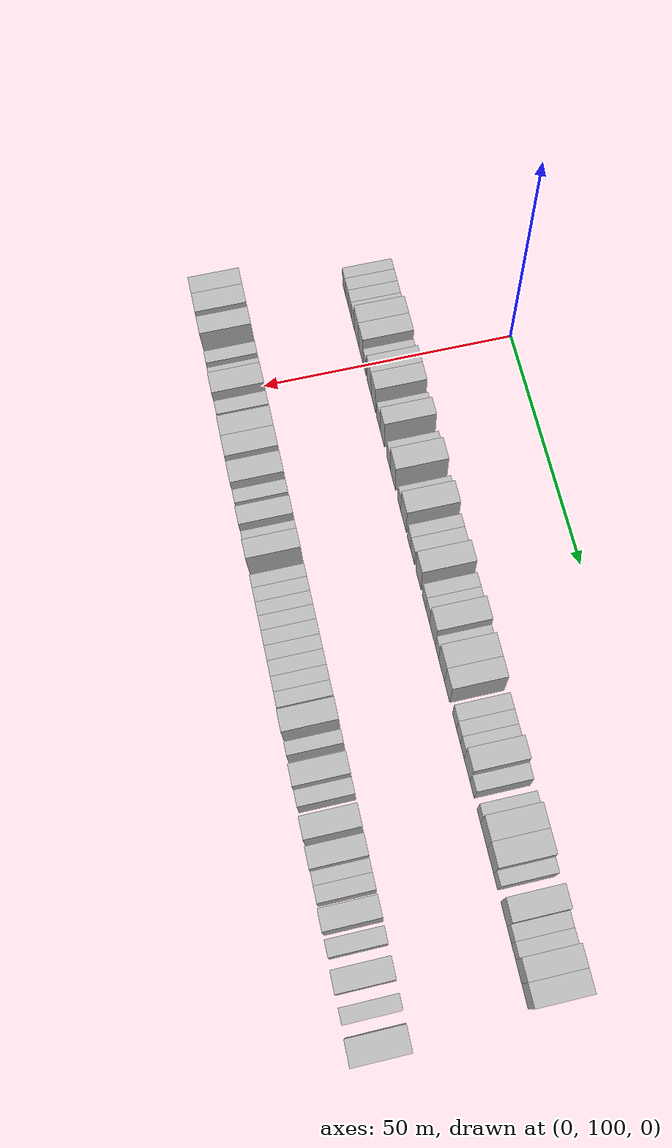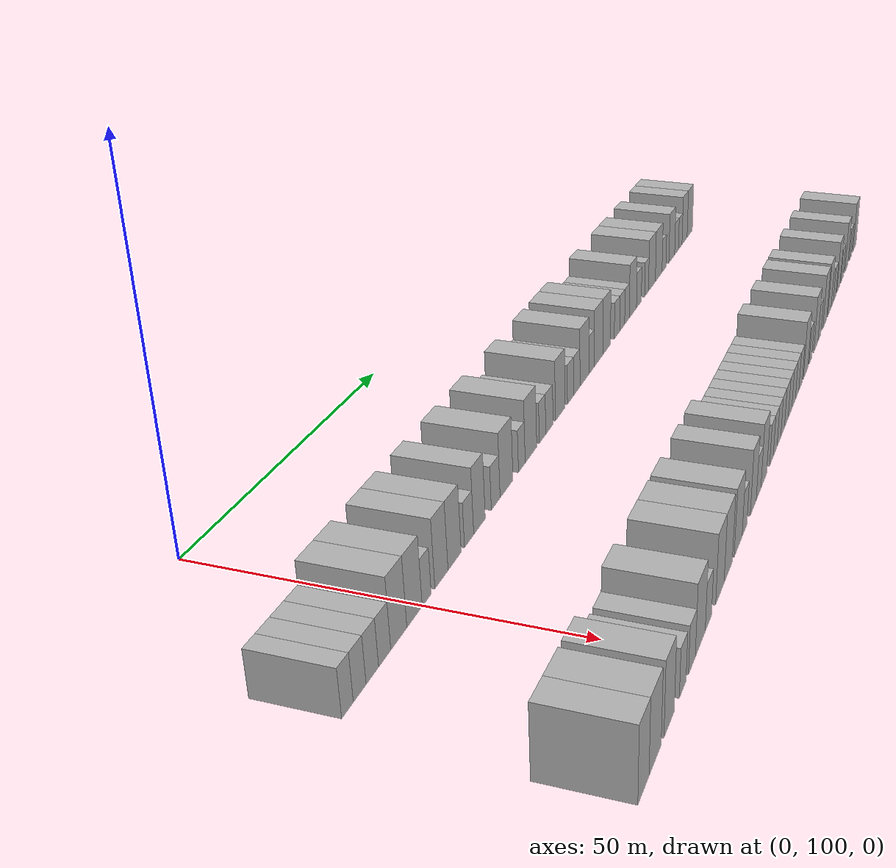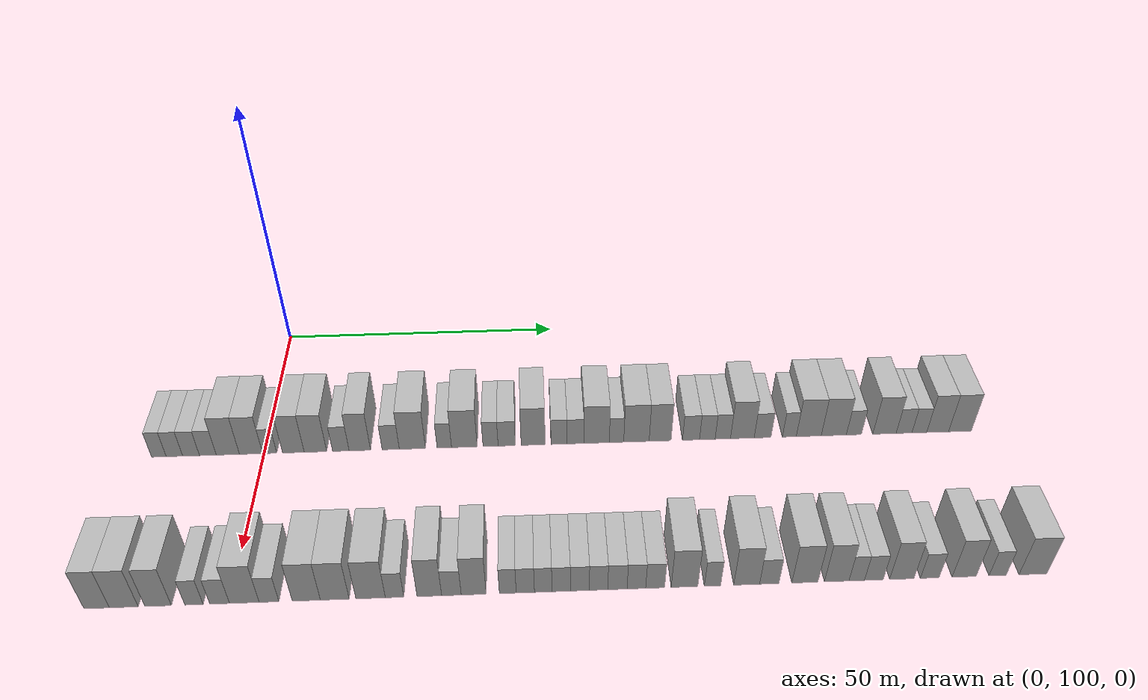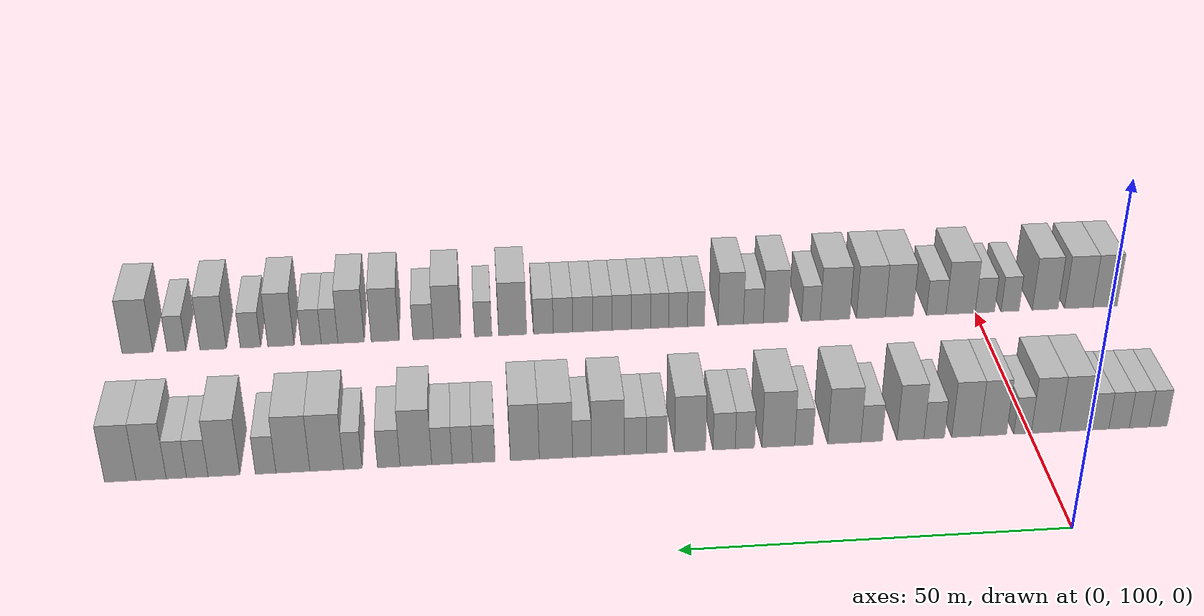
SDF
<sdf version="1.6">
 <world name="default">
  <model name="building_80">
   <static>1</static>
   <pose>25.0000 82.2158 0 0.000000 0.000000 0.000000</pose>
   <link name="link">
    <pose>0 0 3.00 0 0 0</pose>
    <collision name="collision"><geometry><box><size>10.0000 2.4745 6.0000</size></box></geometry></collision>
    <visual name="visual">
     <cast_shadows>0</cast_shadows>
     <geometry><box><size>10.0000 2.4745 6.0000</size></box></geometry>
     <material>
      <script>
       <uri>model://HANNAS_wall/materials/scripts</uri>
       <uri>model://HANNAS_wall/materials/textures</uri>
       <name>vrc/HANNAS_wall</name>
      </script>
     </material>
    </visual>
   </link>
  </model>
  <model name="building_81">
   <static>1</static>
   <pose>25.0000 84.8441 0 0.000000 0.000000 0.000000</pose>
   <link name="link">
    <pose>0 0 3.00 0 0 0</pose>
    <collision name="collision"><geometry><box><size>10.0000 2.7821 6.0000</size></box></geometry></collision>
    <visual name="visual">
     <cast_shadows>0</cast_shadows>
     <geometry><box><size>10.0000 2.7821 6.0000</size></box></geometry>
     <material>
      <script>
       <uri>model://HANNAS_wall/materials/scripts</uri>
       <uri>model://HANNAS_wall/materials/textures</uri>
       <name>vrc/HANNAS_wall</name>
      </script>
     </material>
    </visual>
   </link>
  </model>
  <model name="building_82">
   <static>1</static>
   <pose>25.0000 87.6559 0 0.000000 0.000000 0.000000</pose>
   <link name="link">
    <pose>0 0 3.00 0 0 0</pose>
    <collision name="collision"><geometry><box><size>10.0000 2.8415 6.0000</size></box></geometry></collision>
    <visual name="visual">
     <cast_shadows>0</cast_shadows>
     <geometry><box><size>10.0000 2.8415 6.0000</size></box></geometry>
     <material>
      <script>
       <uri>model://HANNAS_wall/materials/scripts</uri>
       <uri>model://HANNAS_wall/materials/textures</uri>
       <name>vrc/HANNAS_wall</name>
      </script>
     </material>
    </visual>
   </link>
  </model>
  <model name="building_83">
   <static>1</static>
   <pose>25.0000 90.5037 0 0.000000 0.000000 0.000000</pose>
   <link name="link">
    <pose>0 0 3.00 0 0 0</pose>
    <collision name="collision"><geometry><box><size>10.0000 2.8540 6.0000</size></box></geometry></collision>
    <visual name="visual">
     <cast_shadows>0</cast_shadows>
     <geometry><box><size>10.0000 2.8540 6.0000</size></box></geometry>
     <material>
      <script>
       <uri>model://HANNAS_wall/materials/scripts</uri>
       <uri>model://HANNAS_wall/materials/textures</uri>
       <name>vrc/HANNAS_wall</name>
      </script>
     </material>
    </visual>
   </link>
  </model>
  <model name="building_84">
   <static>1</static>
   <pose>25.0000 93.8968 0 0.000000 0.000000 0.000000</pose>
   <link name="link">
    <pose>0 0 4.50 0 0 0</pose>
    <collision name="collision"><geometry><box><size>10.0000 3.9322 9.0000</size></box></geometry></collision>
    <visual name="visual">
     <cast_shadows>0</cast_shadows>
     <geometry><box><size>10.0000 3.9322 9.0000</size></box></geometry>
     <material>
      <script>
       <uri>model://HANNAS_wall/materials/scripts</uri>
       <uri>model://HANNAS_wall/materials/textures</uri>
       <name>vrc/HANNAS_wall</name>
      </script>
     </material>
    </visual>
   </link>
  </model>
  <model name="building_85">
   <static>1</static>
   <pose>25.0000 97.8364 0 0.000000 0.000000 0.000000</pose>
   <link name="link">
    <pose>0 0 4.50 0 0 0</pose>
    <collision name="collision"><geometry><box><size>10.0000 3.9468 9.0000</size></box></geometry></collision>
    <visual name="visual">
     <cast_shadows>0</cast_shadows>
     <geometry><box><size>10.0000 3.9468 9.0000</size></box></geometry>
     <material>
      <script>
       <uri>model://HANNAS_wall/materials/scripts</uri>
       <uri>model://HANNAS_wall/materials/textures</uri>
       <name>vrc/HANNAS_wall</name>
      </script>
     </material>
    </visual>
   </link>
  </model>
  <model name="building_86">
   <static>1</static>
   <pose>25.0000 101.0120 0 0.000000 0.000000 0.000000</pose>
   <link name="link">
    <pose>0 0 3.00 0 0 0</pose>
    <collision name="collision"><geometry><box><size>10.0000 2.4045 6.0000</size></box></geometry></collision>
    <visual name="visual">
     <cast_shadows>0</cast_shadows>
     <geometry><box><size>10.0000 2.4045 6.0000</size></box></geometry>
     <material>
      <script>
       <uri>model://HANNAS_wall/materials/scripts</uri>
       <uri>model://HANNAS_wall/materials/textures</uri>
       <name>vrc/HANNAS_wall</name>
      </script>
     </material>
    </visual>
   </link>
  </model>
  <model name="building_87">
   <static>1</static>
   <pose>25.0000 105.0516 0 0.000000 0.000000 0.000000</pose>
   <link name="link">
    <pose>0 0 4.50 0 0 0</pose>
    <collision name="collision"><geometry><box><size>10.0000 3.6748 9.0000</size></box></geometry></collision>
    <visual name="visual">
     <cast_shadows>0</cast_shadows>
     <geometry><box><size>10.0000 3.6748 9.0000</size></box></geometry>
     <material>
      <script>
       <uri>model://HANNAS_wall/materials/scripts</uri>
       <uri>model://HANNAS_wall/materials/textures</uri>
       <name>vrc/HANNAS_wall</name>
      </script>
     </material>
    </visual>
   </link>
  </model>
  <model name="building_88">
   <static>1</static>
   <pose>25.0000 108.8113 0 0.000000 0.000000 0.000000</pose>
   <link name="link">
    <pose>0 0 4.50 0 0 0</pose>
    <collision name="collision"><geometry><box><size>10.0000 3.8446 9.0000</size></box></geometry></collision>
    <visual name="visual">
     <cast_shadows>0</cast_shadows>
     <geometry><box><size>10.0000 3.8446 9.0000</size></box></geometry>
     <material>
      <script>
       <uri>model://HANNAS_wall/materials/scripts</uri>
       <uri>model://HANNAS_wall/materials/textures</uri>
       <name>vrc/HANNAS_wall</name>
      </script>
     </material>
    </visual>
   </link>
  </model>
  <model name="building_89">
   <static>1</static>
   <pose>25.0000 113.1434 0 0.000000 0.000000 0.000000</pose>
   <link name="link">
    <pose>0 0 3.00 0 0 0</pose>
    <collision name="collision"><geometry><box><size>10.0000 2.8195 6.0000</size></box></geometry></collision>
    <visual name="visual">
     <cast_shadows>0</cast_shadows>
     <geometry><box><size>10.0000 2.8195 6.0000</size></box></geometry>
     <material>
      <script>
       <uri>model://HANNAS_wall/materials/scripts</uri>
       <uri>model://HANNAS_wall/materials/textures</uri>
       <name>vrc/HANNAS_wall</name>
      </script>
     </material>
    </visual>
   </link>
  </model>
  <model name="building_90">
   <static>1</static>
   <pose>25.0000 116.3855 0 0.000000 0.000000 0.000000</pose>
   <link name="link">
    <pose>0 0 4.50 0 0 0</pose>
    <collision name="collision"><geometry><box><size>10.0000 3.6647 9.0000</size></box></geometry></collision>
    <visual name="visual">
     <cast_shadows>0</cast_shadows>
     <geometry><box><size>10.0000 3.6647 9.0000</size></box></geometry>
     <material>
      <script>
       <uri>model://HANNAS_wall/materials/scripts</uri>
       <uri>model://HANNAS_wall/materials/textures</uri>
       <name>vrc/HANNAS_wall</name>
      </script>
     </material>
    </visual>
   </link>
  </model>
  <model name="building_91">
   <static>1</static>
   <pose>25.0000 121.6849 0 0.000000 0.000000 0.000000</pose>
   <link name="link">
    <pose>0 0 3.00 0 0 0</pose>
    <collision name="collision"><geometry><box><size>10.0000 2.9340 6.0000</size></box></geometry></collision>
    <visual name="visual">
     <cast_shadows>0</cast_shadows>
     <geometry><box><size>10.0000 2.9340 6.0000</size></box></geometry>
     <material>
      <script>
       <uri>model://HANNAS_wall/materials/scripts</uri>
       <uri>model://HANNAS_wall/materials/textures</uri>
       <name>vrc/HANNAS_wall</name>
      </script>
     </material>
    </visual>
   </link>
  </model>
  <model name="building_92">
   <static>1</static>
   <pose>25.0000 125.4001 0 0.000000 0.000000 0.000000</pose>
   <link name="link">
    <pose>0 0 4.50 0 0 0</pose>
    <collision name="collision"><geometry><box><size>10.0000 4.4963 9.0000</size></box></geometry></collision>
    <visual name="visual">
     <cast_shadows>0</cast_shadows>
     <geometry><box><size>10.0000 4.4963 9.0000</size></box></geometry>
     <material>
      <script>
       <uri>model://HANNAS_wall/materials/scripts</uri>
       <uri>model://HANNAS_wall/materials/textures</uri>
       <name>vrc/HANNAS_wall</name>
      </script>
     </material>
    </visual>
   </link>
  </model>
  <model name="building_93">
   <static>1</static>
   <pose>25.0000 130.8869 0 0.000000 0.000000 0.000000</pose>
   <link name="link">
    <pose>0 0 3.00 0 0 0</pose>
    <collision name="collision"><geometry><box><size>10.0000 2.4773 6.0000</size></box></geometry></collision>
    <visual name="visual">
     <cast_shadows>0</cast_shadows>
     <geometry><box><size>10.0000 2.4773 6.0000</size></box></geometry>
     <material>
      <script>
       <uri>model://HANNAS_wall/materials/scripts</uri>
       <uri>model://HANNAS_wall/materials/textures</uri>
       <name>vrc/HANNAS_wall</name>
      </script>
     </material>
    </visual>
   </link>
  </model>
  <model name="building_94">
   <static>1</static>
   <pose>25.0000 134.3374 0 0.000000 0.000000 0.000000</pose>
   <link name="link">
    <pose>0 0 4.50 0 0 0</pose>
    <collision name="collision"><geometry><box><size>10.0000 4.4237 9.0000</size></box></geometry></collision>
    <visual name="visual">
     <cast_shadows>0</cast_shadows>
     <geometry><box><size>10.0000 4.4237 9.0000</size></box></geometry>
     <material>
      <script>
       <uri>model://HANNAS_wall/materials/scripts</uri>
       <uri>model://HANNAS_wall/materials/textures</uri>
       <name>vrc/HANNAS_wall</name>
      </script>
     </material>
    </visual>
   </link>
  </model>
  <model name="building_95">
   <static>1</static>
   <pose>25.0000 138.8482 0 0.000000 0.000000 0.000000</pose>
   <link name="link">
    <pose>0 0 3.00 0 0 0</pose>
    <collision name="collision"><geometry><box><size>10.0000 2.5978 6.0000</size></box></geometry></collision>
    <visual name="visual">
     <cast_shadows>0</cast_shadows>
     <geometry><box><size>10.0000 2.5978 6.0000</size></box></geometry>
     <material>
      <script>
       <uri>model://HANNAS_wall/materials/scripts</uri>
       <uri>model://HANNAS_wall/materials/textures</uri>
       <name>vrc/HANNAS_wall</name>
      </script>
     </material>
    </visual>
   </link>
  </model>
  <model name="building_96">
   <static>1</static>
   <pose>25.0000 141.6420 0 0.000000 0.000000 0.000000</pose>
   <link name="link">
    <pose>0 0 3.00 0 0 0</pose>
    <collision name="collision"><geometry><box><size>10.0000 2.9898 6.0000</size></box></geometry></collision>
    <visual name="visual">
     <cast_shadows>0</cast_shadows>
     <geometry><box><size>10.0000 2.9898 6.0000</size></box></geometry>
     <material>
      <script>
       <uri>model://HANNAS_wall/materials/scripts</uri>
       <uri>model://HANNAS_wall/materials/textures</uri>
       <name>vrc/HANNAS_wall</name>
      </script>
     </material>
    </visual>
   </link>
  </model>
  <model name="building_97">
   <static>1</static>
   <pose>25.0000 146.2138 0 0.000000 0.000000 0.000000</pose>
   <link name="link">
    <pose>0 0 4.50 0 0 0</pose>
    <collision name="collision"><geometry><box><size>10.0000 4.1538 9.0000</size></box></geometry></collision>
    <visual name="visual">
     <cast_shadows>0</cast_shadows>
     <geometry><box><size>10.0000 4.1538 9.0000</size></box></geometry>
     <material>
      <script>
       <uri>model://HANNAS_wall/materials/scripts</uri>
       <uri>model://HANNAS_wall/materials/textures</uri>
       <name>vrc/HANNAS_wall</name>
      </script>
     </material>
    </visual>
   </link>
  </model>
  <model name="building_98">
   <static>1</static>
   <pose>25.0000 150.6836 0 0.000000 0.000000 0.000000</pose>
   <link name="link">
    <pose>0 0 3.00 0 0 0</pose>
    <collision name="collision"><geometry><box><size>10.0000 2.7858 6.0000</size></box></geometry></collision>
    <visual name="visual">
     <cast_shadows>0</cast_shadows>
     <geometry><box><size>10.0000 2.7858 6.0000</size></box></geometry>
     <material>
      <script>
       <uri>model://HANNAS_wall/materials/scripts</uri>
       <uri>model://HANNAS_wall/materials/textures</uri>
       <name>vrc/HANNAS_wall</name>
      </script>
     </material>
    </visual>
   </link>
  </model>
  <model name="building_99">
   <static>1</static>
   <pose>25.0000 153.5338 0 0.000000 0.000000 0.000000</pose>
   <link name="link">
    <pose>0 0 3.00 0 0 0</pose>
    <collision name="collision"><geometry><box><size>10.0000 2.9147 6.0000</size></box></geometry></collision>
    <visual name="visual">
     <cast_shadows>0</cast_shadows>
     <geometry><box><size>10.0000 2.9147 6.0000</size></box></geometry>
     <material>
      <script>
       <uri>model://HANNAS_wall/materials/scripts</uri>
       <uri>model://HANNAS_wall/materials/textures</uri>
       <name>vrc/HANNAS_wall</name>
      </script>
     </material>
    </visual>
   </link>
  </model>
  <model name="building_100">
   <static>1</static>
   <pose>25.0000 157.1898 0 0.000000 0.000000 0.000000</pose>
   <link name="link">
    <pose>0 0 4.50 0 0 0</pose>
    <collision name="collision"><geometry><box><size>10.0000 4.3972 9.0000</size></box></geometry></collision>
    <visual name="visual">
     <cast_shadows>0</cast_shadows>
     <geometry><box><size>10.0000 4.3972 9.0000</size></box></geometry>
     <material>
      <script>
       <uri>model://HANNAS_wall/materials/scripts</uri>
       <uri>model://HANNAS_wall/materials/textures</uri>
       <name>vrc/HANNAS_wall</name>
      </script>
     </material>
    </visual>
   </link>
  </model>
  <model name="building_101">
   <static>1</static>
   <pose>25.0000 160.6406 0 0.000000 0.000000 0.000000</pose>
   <link name="link">
    <pose>0 0 3.00 0 0 0</pose>
    <collision name="collision"><geometry><box><size>10.0000 2.5042 6.0000</size></box></geometry></collision>
    <visual name="visual">
     <cast_shadows>0</cast_shadows>
     <geometry><box><size>10.0000 2.5042 6.0000</size></box></geometry>
     <material>
      <script>
       <uri>model://HANNAS_wall/materials/scripts</uri>
       <uri>model://HANNAS_wall/materials/textures</uri>
       <name>vrc/HANNAS_wall</name>
      </script>
     </material>
    </visual>
   </link>
  </model>
  <model name="building_102">
   <static>1</static>
   <pose>25.0000 164.1005 0 0.000000 0.000000 0.000000</pose>
   <link name="link">
    <pose>0 0 4.50 0 0 0</pose>
    <collision name="collision"><geometry><box><size>10.0000 4.4156 9.0000</size></box></geometry></collision>
    <visual name="visual">
     <cast_shadows>0</cast_shadows>
     <geometry><box><size>10.0000 4.4156 9.0000</size></box></geometry>
     <material>
      <script>
       <uri>model://HANNAS_wall/materials/scripts</uri>
       <uri>model://HANNAS_wall/materials/textures</uri>
       <name>vrc/HANNAS_wall</name>
      </script>
     </material>
    </visual>
   </link>
  </model>
  <model name="building_103">
   <static>1</static>
   <pose>25.0000 168.2230 0 0.000000 0.000000 0.000000</pose>
   <link name="link">
    <pose>0 0 4.50 0 0 0</pose>
    <collision name="collision"><geometry><box><size>10.0000 3.8293 9.0000</size></box></geometry></collision>
    <visual name="visual">
     <cast_shadows>0</cast_shadows>
     <geometry><box><size>10.0000 3.8293 9.0000</size></box></geometry>
     <material>
      <script>
       <uri>model://HANNAS_wall/materials/scripts</uri>
       <uri>model://HANNAS_wall/materials/textures</uri>
       <name>vrc/HANNAS_wall</name>
      </script>
     </material>
    </visual>
   </link>
  </model>
  <model name="building_104">
   <static>1</static>
   <pose>25.0000 173.6203 0 0.000000 0.000000 0.000000</pose>
   <link name="link">
    <pose>0 0 3.00 0 0 0</pose>
    <collision name="collision"><geometry><box><size>10.0000 2.9654 6.0000</size></box></geometry></collision>
    <visual name="visual">
     <cast_shadows>0</cast_shadows>
     <geometry><box><size>10.0000 2.9654 6.0000</size></box></geometry>
     <material>
      <script>
       <uri>model://HANNAS_wall/materials/scripts</uri>
       <uri>model://HANNAS_wall/materials/textures</uri>
       <name>vrc/HANNAS_wall</name>
      </script>
     </material>
    </visual>
   </link>
  </model>
  <model name="building_105">
   <static>1</static>
   <pose>25.0000 176.4651 0 0.000000 0.000000 0.000000</pose>
   <link name="link">
    <pose>0 0 3.00 0 0 0</pose>
    <collision name="collision"><geometry><box><size>10.0000 2.7241 6.0000</size></box></geometry></collision>
    <visual name="visual">
     <cast_shadows>0</cast_shadows>
     <geometry><box><size>10.0000 2.7241 6.0000</size></box></geometry>
     <material>
      <script>
       <uri>model://HANNAS_wall/materials/scripts</uri>
       <uri>model://HANNAS_wall/materials/textures</uri>
       <name>vrc/HANNAS_wall</name>
      </script>
     </material>
    </visual>
   </link>
  </model>
  <model name="building_106">
   <static>1</static>
   <pose>25.0000 179.1671 0 0.000000 0.000000 0.000000</pose>
   <link name="link">
    <pose>0 0 3.00 0 0 0</pose>
    <collision name="collision"><geometry><box><size>10.0000 2.6798 6.0000</size></box></geometry></collision>
    <visual name="visual">
     <cast_shadows>0</cast_shadows>
     <geometry><box><size>10.0000 2.6798 6.0000</size></box></geometry>
     <material>
      <script>
       <uri>model://HANNAS_wall/materials/scripts</uri>
       <uri>model://HANNAS_wall/materials/textures</uri>
       <name>vrc/HANNAS_wall</name>
      </script>
     </material>
    </visual>
   </link>
  </model>
  <model name="building_107">
   <static>1</static>
   <pose>25.0000 182.5875 0 0.000000 0.000000 0.000000</pose>
   <link name="link">
    <pose>0 0 4.50 0 0 0</pose>
    <collision name="collision"><geometry><box><size>10.0000 4.1611 9.0000</size></box></geometry></collision>
    <visual name="visual">
     <cast_shadows>0</cast_shadows>
     <geometry><box><size>10.0000 4.1611 9.0000</size></box></geometry>
     <material>
      <script>
       <uri>model://HANNAS_wall/materials/scripts</uri>
       <uri>model://HANNAS_wall/materials/textures</uri>
       <name>vrc/HANNAS_wall</name>
      </script>
     </material>
    </visual>
   </link>
  </model>
  <model name="building_108">
   <static>1</static>
   <pose>25.0000 186.1441 0 0.000000 0.000000 0.000000</pose>
   <link name="link">
    <pose>0 0 3.00 0 0 0</pose>
    <collision name="collision"><geometry><box><size>10.0000 2.9522 6.0000</size></box></geometry></collision>
    <visual name="visual">
     <cast_shadows>0</cast_shadows>
     <geometry><box><size>10.0000 2.9522 6.0000</size></box></geometry>
     <material>
      <script>
       <uri>model://HANNAS_wall/materials/scripts</uri>
       <uri>model://HANNAS_wall/materials/textures</uri>
       <name>vrc/HANNAS_wall</name>
      </script>
     </material>
    </visual>
   </link>
  </model>
  <model name="building_109">
   <static>1</static>
   <pose>25.0000 190.8401 0 0.000000 0.000000 0.000000</pose>
   <link name="link">
    <pose>0 0 3.00 0 0 0</pose>
    <collision name="collision"><geometry><box><size>10.0000 2.4398 6.0000</size></box></geometry></collision>
    <visual name="visual">
     <cast_shadows>0</cast_shadows>
     <geometry><box><size>10.0000 2.4398 6.0000</size></box></geometry>
     <material>
      <script>
       <uri>model://HANNAS_wall/materials/scripts</uri>
       <uri>model://HANNAS_wall/materials/textures</uri>
       <name>vrc/HANNAS_wall</name>
      </script>
     </material>
    </visual>
   </link>
  </model>
  <model name="building_110">
   <static>1</static>
   <pose>25.0000 194.2554 0 0.000000 0.000000 0.000000</pose>
   <link name="link">
    <pose>0 0 4.50 0 0 0</pose>
    <collision name="collision"><geometry><box><size>10.0000 4.3907 9.0000</size></box></geometry></collision>
    <visual name="visual">
     <cast_shadows>0</cast_shadows>
     <geometry><box><size>10.0000 4.3907 9.0000</size></box></geometry>
     <material>
      <script>
       <uri>model://HANNAS_wall/materials/scripts</uri>
       <uri>model://HANNAS_wall/materials/textures</uri>
       <name>vrc/HANNAS_wall</name>
      </script>
     </material>
    </visual>
   </link>
  </model>
  <model name="building_111">
   <static>1</static>
   <pose>25.0000 198.6605 0 0.000000 0.000000 0.000000</pose>
   <link name="link">
    <pose>0 0 4.50 0 0 0</pose>
    <collision name="collision"><geometry><box><size>10.0000 4.4196 9.0000</size></box></geometry></collision>
    <visual name="visual">
     <cast_shadows>0</cast_shadows>
     <geometry><box><size>10.0000 4.4196 9.0000</size></box></geometry>
     <material>
      <script>
       <uri>model://HANNAS_wall/materials/scripts</uri>
       <uri>model://HANNAS_wall/materials/textures</uri>
       <name>vrc/HANNAS_wall</name>
      </script>
     </material>
    </visual>
   </link>
  </model>
  <model name="building_112">
   <static>1</static>
   <pose>25.0000 202.2062 0 0.000000 0.000000 0.000000</pose>
   <link name="link">
    <pose>0 0 3.00 0 0 0</pose>
    <collision name="collision"><geometry><box><size>10.0000 2.6719 6.0000</size></box></geometry></collision>
    <visual name="visual">
     <cast_shadows>0</cast_shadows>
     <geometry><box><size>10.0000 2.6719 6.0000</size></box></geometry>
     <material>
      <script>
       <uri>model://HANNAS_wall/materials/scripts</uri>
       <uri>model://HANNAS_wall/materials/textures</uri>
       <name>vrc/HANNAS_wall</name>
      </script>
     </material>
    </visual>
   </link>
  </model>
  <model name="building_113">
   <static>1</static>
   <pose>25.0000 207.6004 0 0.000000 0.000000 0.000000</pose>
   <link name="link">
    <pose>0 0 4.50 0 0 0</pose>
    <collision name="collision"><geometry><box><size>10.0000 4.1165 9.0000</size></box></geometry></collision>
    <visual name="visual">
     <cast_shadows>0</cast_shadows>
     <geometry><box><size>10.0000 4.1165 9.0000</size></box></geometry>
     <material>
      <script>
       <uri>model://HANNAS_wall/materials/scripts</uri>
       <uri>model://HANNAS_wall/materials/textures</uri>
       <name>vrc/HANNAS_wall</name>
      </script>
     </material>
    </visual>
   </link>
  </model>
  <model name="building_114">
   <static>1</static>
   <pose>25.0000 211.0529 0 0.000000 0.000000 0.000000</pose>
   <link name="link">
    <pose>0 0 3.00 0 0 0</pose>
    <collision name="collision"><geometry><box><size>10.0000 2.7885 6.0000</size></box></geometry></collision>
    <visual name="visual">
     <cast_shadows>0</cast_shadows>
     <geometry><box><size>10.0000 2.7885 6.0000</size></box></geometry>
     <material>
      <script>
       <uri>model://HANNAS_wall/materials/scripts</uri>
       <uri>model://HANNAS_wall/materials/textures</uri>
       <name>vrc/HANNAS_wall</name>
      </script>
     </material>
    </visual>
   </link>
  </model>
  <model name="building_115">
   <static>1</static>
   <pose>25.0000 213.7548 0 0.000000 0.000000 0.000000</pose>
   <link name="link">
    <pose>0 0 3.00 0 0 0</pose>
    <collision name="collision"><geometry><box><size>10.0000 2.6151 6.0000</size></box></geometry></collision>
    <visual name="visual">
     <cast_shadows>0</cast_shadows>
     <geometry><box><size>10.0000 2.6151 6.0000</size></box></geometry>
     <material>
      <script>
       <uri>model://HANNAS_wall/materials/scripts</uri>
       <uri>model://HANNAS_wall/materials/textures</uri>
       <name>vrc/HANNAS_wall</name>
      </script>
     </material>
    </visual>
   </link>
  </model>
  <model name="building_116">
   <static>1</static>
   <pose>25.0000 216.9981 0 0.000000 0.000000 0.000000</pose>
   <link name="link">
    <pose>0 0 4.50 0 0 0</pose>
    <collision name="collision"><geometry><box><size>10.0000 3.8716 9.0000</size></box></geometry></collision>
    <visual name="visual">
     <cast_shadows>0</cast_shadows>
     <geometry><box><size>10.0000 3.8716 9.0000</size></box></geometry>
     <material>
      <script>
       <uri>model://HANNAS_wall/materials/scripts</uri>
       <uri>model://HANNAS_wall/materials/textures</uri>
       <name>vrc/HANNAS_wall</name>
      </script>
     </material>
    </visual>
   </link>
  </model>
  <model name="building_117">
   <static>1</static>
   <pose>25.0000 220.9634 0 0.000000 0.000000 0.000000</pose>
   <link name="link">
    <pose>0 0 4.50 0 0 0</pose>
    <collision name="collision"><geometry><box><size>10.0000 4.0590 9.0000</size></box></geometry></collision>
    <visual name="visual">
     <cast_shadows>0</cast_shadows>
     <geometry><box><size>10.0000 4.0590 9.0000</size></box></geometry>
     <material>
      <script>
       <uri>model://HANNAS_wall/materials/scripts</uri>
       <uri>model://HANNAS_wall/materials/textures</uri>
       <name>vrc/HANNAS_wall</name>
      </script>
     </material>
    </visual>
   </link>
  </model>
  <model name="building_187">
   <static>1</static>
   <pose>55.0000 80.3260 0 0.000000 0.000000 0.000000</pose>
   <link name="link">
    <pose>0 0 4.50 0 0 0</pose>
    <collision name="collision"><geometry><box><size>10.0000 3.7392 9.0000</size></box></geometry></collision>
    <visual name="visual">
     <cast_shadows>0</cast_shadows>
     <geometry><box><size>10.0000 3.7392 9.0000</size></box></geometry>
     <material>
      <script>
       <uri>model://HANNAS_wall/materials/scripts</uri>
       <uri>model://HANNAS_wall/materials/textures</uri>
       <name>vrc/HANNAS_wall</name>
      </script>
     </material>
    </visual>
   </link>
  </model>
  <model name="building_188">
   <static>1</static>
   <pose>55.0000 84.3392 0 0.000000 0.000000 0.000000</pose>
   <link name="link">
    <pose>0 0 4.50 0 0 0</pose>
    <collision name="collision"><geometry><box><size>10.0000 4.2872 9.0000</size></box></geometry></collision>
    <visual name="visual">
     <cast_shadows>0</cast_shadows>
     <geometry><box><size>10.0000 4.2872 9.0000</size></box></geometry>
     <material>
      <script>
       <uri>model://HANNAS_wall/materials/scripts</uri>
       <uri>model://HANNAS_wall/materials/textures</uri>
       <name>vrc/HANNAS_wall</name>
      </script>
     </material>
    </visual>
   </link>
  </model>
  <model name="building_189">
   <static>1</static>
   <pose>55.0000 89.4452 0 0.000000 0.000000 0.000000</pose>
   <link name="link">
    <pose>0 0 4.50 0 0 0</pose>
    <collision name="collision"><geometry><box><size>10.0000 3.9248 9.0000</size></box></geometry></collision>
    <visual name="visual">
     <cast_shadows>0</cast_shadows>
     <geometry><box><size>10.0000 3.9248 9.0000</size></box></geometry>
     <material>
      <script>
       <uri>model://HANNAS_wall/materials/scripts</uri>
       <uri>model://HANNAS_wall/materials/textures</uri>
       <name>vrc/HANNAS_wall</name>
      </script>
     </material>
    </visual>
   </link>
  </model>
  <model name="building_190">
   <static>1</static>
   <pose>55.0000 94.7690 0 0.000000 0.000000 0.000000</pose>
   <link name="link">
    <pose>0 0 3.00 0 0 0</pose>
    <collision name="collision"><geometry><box><size>10.0000 2.7230 6.0000</size></box></geometry></collision>
    <visual name="visual">
     <cast_shadows>0</cast_shadows>
     <geometry><box><size>10.0000 2.7230 6.0000</size></box></geometry>
     <material>
      <script>
       <uri>model://HANNAS_wall/materials/scripts</uri>
       <uri>model://HANNAS_wall/materials/textures</uri>
       <name>vrc/HANNAS_wall</name>
      </script>
     </material>
    </visual>
   </link>
  </model>
  <model name="building_191">
   <static>1</static>
   <pose>55.0000 98.5960 0 0.000000 0.000000 0.000000</pose>
   <link name="link">
    <pose>0 0 3.00 0 0 0</pose>
    <collision name="collision"><geometry><box><size>10.0000 2.9310 6.0000</size></box></geometry></collision>
    <visual name="visual">
     <cast_shadows>0</cast_shadows>
     <geometry><box><size>10.0000 2.9310 6.0000</size></box></geometry>
     <material>
      <script>
       <uri>model://HANNAS_wall/materials/scripts</uri>
       <uri>model://HANNAS_wall/materials/textures</uri>
       <name>vrc/HANNAS_wall</name>
      </script>
     </material>
    </visual>
   </link>
  </model>
  <model name="building_192">
   <static>1</static>
   <pose>55.0000 102.2714 0 0.000000 0.000000 0.000000</pose>
   <link name="link">
    <pose>0 0 4.50 0 0 0</pose>
    <collision name="collision"><geometry><box><size>10.0000 4.4198 9.0000</size></box></geometry></collision>
    <visual name="visual">
     <cast_shadows>0</cast_shadows>
     <geometry><box><size>10.0000 4.4198 9.0000</size></box></geometry>
     <material>
      <script>
       <uri>model://HANNAS_wall/materials/scripts</uri>
       <uri>model://HANNAS_wall/materials/textures</uri>
       <name>vrc/HANNAS_wall</name>
      </script>
     </material>
    </visual>
   </link>
  </model>
  <model name="building_193">
   <static>1</static>
   <pose>55.0000 105.9557 0 0.000000 0.000000 0.000000</pose>
   <link name="link">
    <pose>0 0 3.00 0 0 0</pose>
    <collision name="collision"><geometry><box><size>10.0000 2.9488 6.0000</size></box></geometry></collision>
    <visual name="visual">
     <cast_shadows>0</cast_shadows>
     <geometry><box><size>10.0000 2.9488 6.0000</size></box></geometry>
     <material>
      <script>
       <uri>model://HANNAS_wall/materials/scripts</uri>
       <uri>model://HANNAS_wall/materials/textures</uri>
       <name>vrc/HANNAS_wall</name>
      </script>
     </material>
    </visual>
   </link>
  </model>
  <model name="building_194">
   <static>1</static>
   <pose>55.0000 111.5355 0 0.000000 0.000000 0.000000</pose>
   <link name="link">
    <pose>0 0 4.50 0 0 0</pose>
    <collision name="collision"><geometry><box><size>10.0000 4.2108 9.0000</size></box></geometry></collision>
    <visual name="visual">
     <cast_shadows>0</cast_shadows>
     <geometry><box><size>10.0000 4.2108 9.0000</size></box></geometry>
     <material>
      <script>
       <uri>model://HANNAS_wall/materials/scripts</uri>
       <uri>model://HANNAS_wall/materials/textures</uri>
       <name>vrc/HANNAS_wall</name>
      </script>
     </material>
    </visual>
   </link>
  </model>
  <model name="building_195">
   <static>1</static>
   <pose>55.0000 115.7997 0 0.000000 0.000000 0.000000</pose>
   <link name="link">
    <pose>0 0 4.50 0 0 0</pose>
    <collision name="collision"><geometry><box><size>10.0000 4.3176 9.0000</size></box></geometry></collision>
    <visual name="visual">
     <cast_shadows>0</cast_shadows>
     <geometry><box><size>10.0000 4.3176 9.0000</size></box></geometry>
     <material>
      <script>
       <uri>model://HANNAS_wall/materials/scripts</uri>
       <uri>model://HANNAS_wall/materials/textures</uri>
       <name>vrc/HANNAS_wall</name>
      </script>
     </material>
    </visual>
   </link>
  </model>
  <model name="building_196">
   <static>1</static>
   <pose>55.0000 121.1772 0 0.000000 0.000000 0.000000</pose>
   <link name="link">
    <pose>0 0 4.50 0 0 0</pose>
    <collision name="collision"><geometry><box><size>10.0000 4.4375 9.0000</size></box></geometry></collision>
    <visual name="visual">
     <cast_shadows>0</cast_shadows>
     <geometry><box><size>10.0000 4.4375 9.0000</size></box></geometry>
     <material>
      <script>
       <uri>model://HANNAS_wall/materials/scripts</uri>
       <uri>model://HANNAS_wall/materials/textures</uri>
       <name>vrc/HANNAS_wall</name>
      </script>
     </material>
    </visual>
   </link>
  </model>
  <model name="building_197">
   <static>1</static>
   <pose>55.0000 124.7846 0 0.000000 0.000000 0.000000</pose>
   <link name="link">
    <pose>0 0 3.00 0 0 0</pose>
    <collision name="collision"><geometry><box><size>10.0000 2.7772 6.0000</size></box></geometry></collision>
    <visual name="visual">
     <cast_shadows>0</cast_shadows>
     <geometry><box><size>10.0000 2.7772 6.0000</size></box></geometry>
     <material>
      <script>
       <uri>model://HANNAS_wall/materials/scripts</uri>
       <uri>model://HANNAS_wall/materials/textures</uri>
       <name>vrc/HANNAS_wall</name>
      </script>
     </material>
    </visual>
   </link>
  </model>
  <model name="building_198">
   <static>1</static>
   <pose>55.0000 130.0257 0 0.000000 0.000000 0.000000</pose>
   <link name="link">
    <pose>0 0 4.50 0 0 0</pose>
    <collision name="collision"><geometry><box><size>10.0000 3.7050 9.0000</size></box></geometry></collision>
    <visual name="visual">
     <cast_shadows>0</cast_shadows>
     <geometry><box><size>10.0000 3.7050 9.0000</size></box></geometry>
     <material>
      <script>
       <uri>model://HANNAS_wall/materials/scripts</uri>
       <uri>model://HANNAS_wall/materials/textures</uri>
       <name>vrc/HANNAS_wall</name>
      </script>
     </material>
    </visual>
   </link>
  </model>
  <model name="building_199">
   <static>1</static>
   <pose>55.0000 133.3538 0 0.000000 0.000000 0.000000</pose>
   <link name="link">
    <pose>0 0 3.00 0 0 0</pose>
    <collision name="collision"><geometry><box><size>10.0000 2.9511 6.0000</size></box></geometry></collision>
    <visual name="visual">
     <cast_shadows>0</cast_shadows>
     <geometry><box><size>10.0000 2.9511 6.0000</size></box></geometry>
     <material>
      <script>
       <uri>model://HANNAS_wall/materials/scripts</uri>
       <uri>model://HANNAS_wall/materials/textures</uri>
       <name>vrc/HANNAS_wall</name>
      </script>
     </material>
    </visual>
   </link>
  </model>
  <model name="building_200">
   <static>1</static>
   <pose>55.0000 136.7176 0 0.000000 0.000000 0.000000</pose>
   <link name="link">
    <pose>0 0 4.50 0 0 0</pose>
    <collision name="collision"><geometry><box><size>10.0000 3.7765 9.0000</size></box></geometry></collision>
    <visual name="visual">
     <cast_shadows>0</cast_shadows>
     <geometry><box><size>10.0000 3.7765 9.0000</size></box></geometry>
     <material>
      <script>
       <uri>model://HANNAS_wall/materials/scripts</uri>
       <uri>model://HANNAS_wall/materials/textures</uri>
       <name>vrc/HANNAS_wall</name>
      </script>
     </material>
    </visual>
   </link>
  </model>
  <model name="building_201">
   <static>1</static>
   <pose>55.0000 141.8792 0 0.000000 0.000000 0.000000</pose>
   <link name="link">
    <pose>0 0 3.00 0 0 0</pose>
    <collision name="collision"><geometry><box><size>10.0000 2.5467 6.0000</size></box></geometry></collision>
    <visual name="visual">
     <cast_shadows>0</cast_shadows>
     <geometry><box><size>10.0000 2.5467 6.0000</size></box></geometry>
     <material>
      <script>
       <uri>model://HANNAS_wall/materials/scripts</uri>
       <uri>model://HANNAS_wall/materials/textures</uri>
       <name>vrc/HANNAS_wall</name>
      </script>
     </material>
    </visual>
   </link>
  </model>
  <model name="building_202">
   <static>1</static>
   <pose>55.0000 144.5340 0 0.000000 0.000000 0.000000</pose>
   <link name="link">
    <pose>0 0 3.00 0 0 0</pose>
    <collision name="collision"><geometry><box><size>10.0000 2.7630 6.0000</size></box></geometry></collision>
    <visual name="visual">
     <cast_shadows>0</cast_shadows>
     <geometry><box><size>10.0000 2.7630 6.0000</size></box></geometry>
     <material>
      <script>
       <uri>model://HANNAS_wall/materials/scripts</uri>
       <uri>model://HANNAS_wall/materials/textures</uri>
       <name>vrc/HANNAS_wall</name>
      </script>
     </material>
    </visual>
   </link>
  </model>
  <model name="building_203">
   <static>1</static>
   <pose>55.0000 147.2429 0 0.000000 0.000000 0.000000</pose>
   <link name="link">
    <pose>0 0 3.00 0 0 0</pose>
    <collision name="collision"><geometry><box><size>10.0000 2.6549 6.0000</size></box></geometry></collision>
    <visual name="visual">
     <cast_shadows>0</cast_shadows>
     <geometry><box><size>10.0000 2.6549 6.0000</size></box></geometry>
     <material>
      <script>
       <uri>model://HANNAS_wall/materials/scripts</uri>
       <uri>model://HANNAS_wall/materials/textures</uri>
       <name>vrc/HANNAS_wall</name>
      </script>
     </material>
    </visual>
   </link>
  </model>
  <model name="building_204">
   <static>1</static>
   <pose>55.0000 149.9702 0 0.000000 0.000000 0.000000</pose>
   <link name="link">
    <pose>0 0 3.00 0 0 0</pose>
    <collision name="collision"><geometry><box><size>10.0000 2.7996 6.0000</size></box></geometry></collision>
    <visual name="visual">
     <cast_shadows>0</cast_shadows>
     <geometry><box><size>10.0000 2.7996 6.0000</size></box></geometry>
     <material>
      <script>
       <uri>model://HANNAS_wall/materials/scripts</uri>
       <uri>model://HANNAS_wall/materials/textures</uri>
       <name>vrc/HANNAS_wall</name>
      </script>
     </material>
    </visual>
   </link>
  </model>
  <model name="building_205">
   <static>1</static>
   <pose>55.0000 152.8091 0 0.000000 0.000000 0.000000</pose>
   <link name="link">
    <pose>0 0 3.00 0 0 0</pose>
    <collision name="collision"><geometry><box><size>10.0000 2.8783 6.0000</size></box></geometry></collision>
    <visual name="visual">
     <cast_shadows>0</cast_shadows>
     <geometry><box><size>10.0000 2.8783 6.0000</size></box></geometry>
     <material>
      <script>
       <uri>model://HANNAS_wall/materials/scripts</uri>
       <uri>model://HANNAS_wall/materials/textures</uri>
       <name>vrc/HANNAS_wall</name>
      </script>
     </material>
    </visual>
   </link>
  </model>
  <model name="building_206">
   <static>1</static>
   <pose>55.0000 155.6506 0 0.000000 0.000000 0.000000</pose>
   <link name="link">
    <pose>0 0 3.00 0 0 0</pose>
    <collision name="collision"><geometry><box><size>10.0000 2.8047 6.0000</size></box></geometry></collision>
    <visual name="visual">
     <cast_shadows>0</cast_shadows>
     <geometry><box><size>10.0000 2.8047 6.0000</size></box></geometry>
     <material>
      <script>
       <uri>model://HANNAS_wall/materials/scripts</uri>
       <uri>model://HANNAS_wall/materials/textures</uri>
       <name>vrc/HANNAS_wall</name>
      </script>
     </material>
    </visual>
   </link>
  </model>
  <model name="building_207">
   <static>1</static>
   <pose>55.0000 158.5278 0 0.000000 0.000000 0.000000</pose>
   <link name="link">
    <pose>0 0 3.00 0 0 0</pose>
    <collision name="collision"><geometry><box><size>10.0000 2.9498 6.0000</size></box></geometry></collision>
    <visual name="visual">
     <cast_shadows>0</cast_shadows>
     <geometry><box><size>10.0000 2.9498 6.0000</size></box></geometry>
     <material>
      <script>
       <uri>model://HANNAS_wall/materials/scripts</uri>
       <uri>model://HANNAS_wall/materials/textures</uri>
       <name>vrc/HANNAS_wall</name>
      </script>
     </material>
    </visual>
   </link>
  </model>
  <model name="building_208">
   <static>1</static>
   <pose>55.0000 161.4265 0 0.000000 0.000000 0.000000</pose>
   <link name="link">
    <pose>0 0 3.00 0 0 0</pose>
    <collision name="collision"><geometry><box><size>10.0000 2.8476 6.0000</size></box></geometry></collision>
    <visual name="visual">
     <cast_shadows>0</cast_shadows>
     <geometry><box><size>10.0000 2.8476 6.0000</size></box></geometry>
     <material>
      <script>
       <uri>model://HANNAS_wall/materials/scripts</uri>
       <uri>model://HANNAS_wall/materials/textures</uri>
       <name>vrc/HANNAS_wall</name>
      </script>
     </material>
    </visual>
   </link>
  </model>
  <model name="building_209">
   <static>1</static>
   <pose>55.0000 164.3010 0 0.000000 0.000000 0.000000</pose>
   <link name="link">
    <pose>0 0 3.00 0 0 0</pose>
    <collision name="collision"><geometry><box><size>10.0000 2.9014 6.0000</size></box></geometry></collision>
    <visual name="visual">
     <cast_shadows>0</cast_shadows>
     <geometry><box><size>10.0000 2.9014 6.0000</size></box></geometry>
     <material>
      <script>
       <uri>model://HANNAS_wall/materials/scripts</uri>
       <uri>model://HANNAS_wall/materials/textures</uri>
       <name>vrc/HANNAS_wall</name>
      </script>
     </material>
    </visual>
   </link>
  </model>
  <model name="building_210">
   <static>1</static>
   <pose>55.0000 168.7909 0 0.000000 0.000000 0.000000</pose>
   <link name="link">
    <pose>0 0 4.50 0 0 0</pose>
    <collision name="collision"><geometry><box><size>10.0000 4.0782 9.0000</size></box></geometry></collision>
    <visual name="visual">
     <cast_shadows>0</cast_shadows>
     <geometry><box><size>10.0000 4.0782 9.0000</size></box></geometry>
     <material>
      <script>
       <uri>model://HANNAS_wall/materials/scripts</uri>
       <uri>model://HANNAS_wall/materials/textures</uri>
       <name>vrc/HANNAS_wall</name>
      </script>
     </material>
    </visual>
   </link>
  </model>
  <model name="building_211">
   <static>1</static>
   <pose>55.0000 173.0844 0 0.000000 0.000000 0.000000</pose>
   <link name="link">
    <pose>0 0 3.00 0 0 0</pose>
    <collision name="collision"><geometry><box><size>10.0000 2.5089 6.0000</size></box></geometry></collision>
    <visual name="visual">
     <cast_shadows>0</cast_shadows>
     <geometry><box><size>10.0000 2.5089 6.0000</size></box></geometry>
     <material>
      <script>
       <uri>model://HANNAS_wall/materials/scripts</uri>
       <uri>model://HANNAS_wall/materials/textures</uri>
       <name>vrc/HANNAS_wall</name>
      </script>
     </material>
    </visual>
   </link>
  </model>
  <model name="building_212">
   <static>1</static>
   <pose>55.0000 178.3226 0 0.000000 0.000000 0.000000</pose>
   <link name="link">
    <pose>0 0 4.50 0 0 0</pose>
    <collision name="collision"><geometry><box><size>10.0000 3.9674 9.0000</size></box></geometry></collision>
    <visual name="visual">
     <cast_shadows>0</cast_shadows>
     <geometry><box><size>10.0000 3.9674 9.0000</size></box></geometry>
     <material>
      <script>
       <uri>model://HANNAS_wall/materials/scripts</uri>
       <uri>model://HANNAS_wall/materials/textures</uri>
       <name>vrc/HANNAS_wall</name>
      </script>
     </material>
    </visual>
   </link>
  </model>
  <model name="building_213">
   <static>1</static>
   <pose>55.0000 181.7975 0 0.000000 0.000000 0.000000</pose>
   <link name="link">
    <pose>0 0 3.00 0 0 0</pose>
    <collision name="collision"><geometry><box><size>10.0000 2.9824 6.0000</size></box></geometry></collision>
    <visual name="visual">
     <cast_shadows>0</cast_shadows>
     <geometry><box><size>10.0000 2.9824 6.0000</size></box></geometry>
     <material>
      <script>
       <uri>model://HANNAS_wall/materials/scripts</uri>
       <uri>model://HANNAS_wall/materials/textures</uri>
       <name>vrc/HANNAS_wall</name>
      </script>
     </material>
    </visual>
   </link>
  </model>
  <model name="building_214">
   <static>1</static>
   <pose>55.0000 187.3028 0 0.000000 0.000000 0.000000</pose>
   <link name="link">
    <pose>0 0 4.50 0 0 0</pose>
    <collision name="collision"><geometry><box><size>10.0000 4.0282 9.0000</size></box></geometry></collision>
    <visual name="visual">
     <cast_shadows>0</cast_shadows>
     <geometry><box><size>10.0000 4.0282 9.0000</size></box></geometry>
     <material>
      <script>
       <uri>model://HANNAS_wall/materials/scripts</uri>
       <uri>model://HANNAS_wall/materials/textures</uri>
       <name>vrc/HANNAS_wall</name>
      </script>
     </material>
    </visual>
   </link>
  </model>
  <model name="building_215">
   <static>1</static>
   <pose>55.0000 192.2143 0 0.000000 0.000000 0.000000</pose>
   <link name="link">
    <pose>0 0 4.50 0 0 0</pose>
    <collision name="collision"><geometry><box><size>10.0000 3.7948 9.0000</size></box></geometry></collision>
    <visual name="visual">
     <cast_shadows>0</cast_shadows>
     <geometry><box><size>10.0000 3.7948 9.0000</size></box></geometry>
     <material>
      <script>
       <uri>model://HANNAS_wall/materials/scripts</uri>
       <uri>model://HANNAS_wall/materials/textures</uri>
       <name>vrc/HANNAS_wall</name>
      </script>
     </material>
    </visual>
   </link>
  </model>
  <model name="building_216">
   <static>1</static>
   <pose>55.0000 195.3134 0 0.000000 0.000000 0.000000</pose>
   <link name="link">
    <pose>0 0 3.00 0 0 0</pose>
    <collision name="collision"><geometry><box><size>10.0000 2.4034 6.0000</size></box></geometry></collision>
    <visual name="visual">
     <cast_shadows>0</cast_shadows>
     <geometry><box><size>10.0000 2.4034 6.0000</size></box></geometry>
     <material>
      <script>
       <uri>model://HANNAS_wall/materials/scripts</uri>
       <uri>model://HANNAS_wall/materials/textures</uri>
       <name>vrc/HANNAS_wall</name>
      </script>
     </material>
    </visual>
   </link>
  </model>
  <model name="building_217">
   <static>1</static>
   <pose>55.0000 197.9638 0 0.000000 0.000000 0.000000</pose>
   <link name="link">
    <pose>0 0 3.00 0 0 0</pose>
    <collision name="collision"><geometry><box><size>10.0000 2.8975 6.0000</size></box></geometry></collision>
    <visual name="visual">
     <cast_shadows>0</cast_shadows>
     <geometry><box><size>10.0000 2.8975 6.0000</size></box></geometry>
     <material>
      <script>
       <uri>model://HANNAS_wall/materials/scripts</uri>
       <uri>model://HANNAS_wall/materials/textures</uri>
       <name>vrc/HANNAS_wall</name>
      </script>
     </material>
    </visual>
   </link>
  </model>
  <model name="building_218">
   <static>1</static>
   <pose>55.0000 202.2999 0 0.000000 0.000000 0.000000</pose>
   <link name="link">
    <pose>0 0 4.50 0 0 0</pose>
    <collision name="collision"><geometry><box><size>10.0000 3.7747 9.0000</size></box></geometry></collision>
    <visual name="visual">
     <cast_shadows>0</cast_shadows>
     <geometry><box><size>10.0000 3.7747 9.0000</size></box></geometry>
     <material>
      <script>
       <uri>model://HANNAS_wall/materials/scripts</uri>
       <uri>model://HANNAS_wall/materials/textures</uri>
       <name>vrc/HANNAS_wall</name>
      </script>
     </material>
    </visual>
   </link>
  </model>
  <model name="building_219">
   <static>1</static>
   <pose>55.0000 206.6439 0 0.000000 0.000000 0.000000</pose>
   <link name="link">
    <pose>0 0 3.00 0 0 0</pose>
    <collision name="collision"><geometry><box><size>10.0000 2.9132 6.0000</size></box></geometry></collision>
    <visual name="visual">
     <cast_shadows>0</cast_shadows>
     <geometry><box><size>10.0000 2.9132 6.0000</size></box></geometry>
     <material>
      <script>
       <uri>model://HANNAS_wall/materials/scripts</uri>
       <uri>model://HANNAS_wall/materials/textures</uri>
       <name>vrc/HANNAS_wall</name>
      </script>
     </material>
    </visual>
   </link>
  </model>
  <model name="building_220">
   <static>1</static>
   <pose>55.0000 211.9847 0 0.000000 0.000000 0.000000</pose>
   <link name="link">
    <pose>0 0 4.50 0 0 0</pose>
    <collision name="collision"><geometry><box><size>10.0000 3.7684 9.0000</size></box></geometry></collision>
    <visual name="visual">
     <cast_shadows>0</cast_shadows>
     <geometry><box><size>10.0000 3.7684 9.0000</size></box></geometry>
     <material>
      <script>
       <uri>model://HANNAS_wall/materials/scripts</uri>
       <uri>model://HANNAS_wall/materials/textures</uri>
       <name>vrc/HANNAS_wall</name>
      </script>
     </material>
    </visual>
   </link>
  </model>
  <model name="building_221">
   <static>1</static>
   <pose>55.0000 217.2138 0 0.000000 0.000000 0.000000</pose>
   <link name="link">
    <pose>0 0 3.00 0 0 0</pose>
    <collision name="collision"><geometry><box><size>10.0000 2.6898 6.0000</size></box></geometry></collision>
    <visual name="visual">
     <cast_shadows>0</cast_shadows>
     <geometry><box><size>10.0000 2.6898 6.0000</size></box></geometry>
     <material>
      <script>
       <uri>model://HANNAS_wall/materials/scripts</uri>
       <uri>model://HANNAS_wall/materials/textures</uri>
       <name>vrc/HANNAS_wall</name>
      </script>
     </material>
    </visual>
   </link>
  </model>
  <model name="building_222">
   <static>1</static>
   <pose>55.0000 222.7409 0 0.000000 0.000000 0.000000</pose>
   <link name="link">
    <pose>0 0 4.50 0 0 0</pose>
    <collision name="collision"><geometry><box><size>10.0000 4.3644 9.0000</size></box></geometry></collision>
    <visual name="visual">
     <cast_shadows>0</cast_shadows>
     <geometry><box><size>10.0000 4.3644 9.0000</size></box></geometry>
     <material>
      <script>
       <uri>model://HANNAS_wall/materials/scripts</uri>
       <uri>model://HANNAS_wall/materials/textures</uri>
       <name>vrc/HANNAS_wall</name>
      </script>
     </material>
    </visual>
   </link>
  </model>
 </world>
</sdf>
